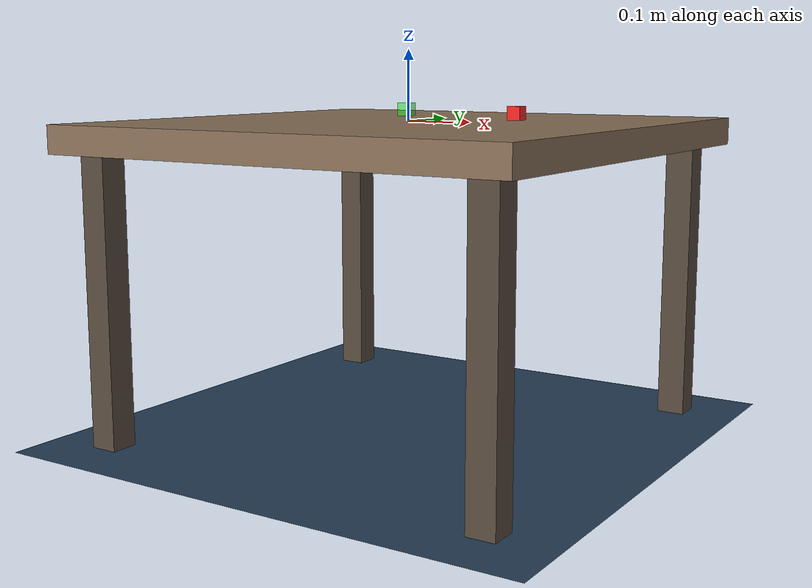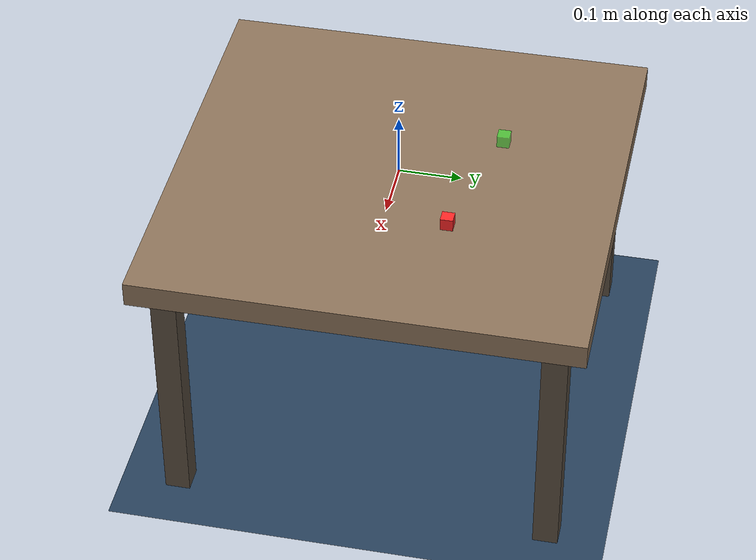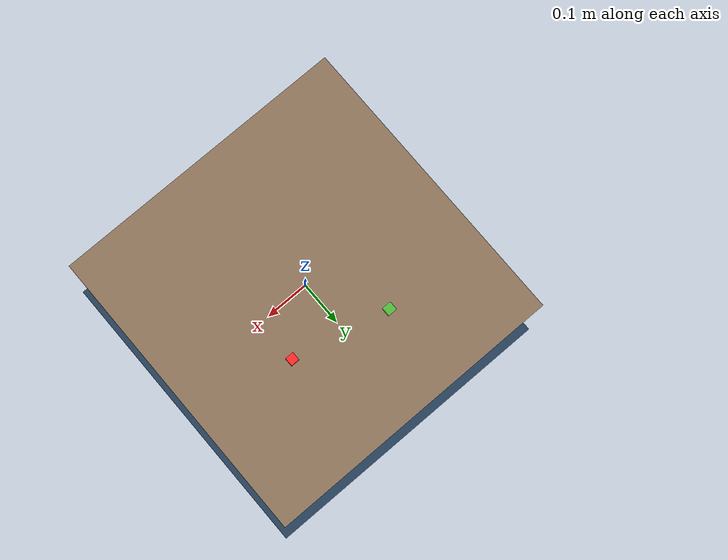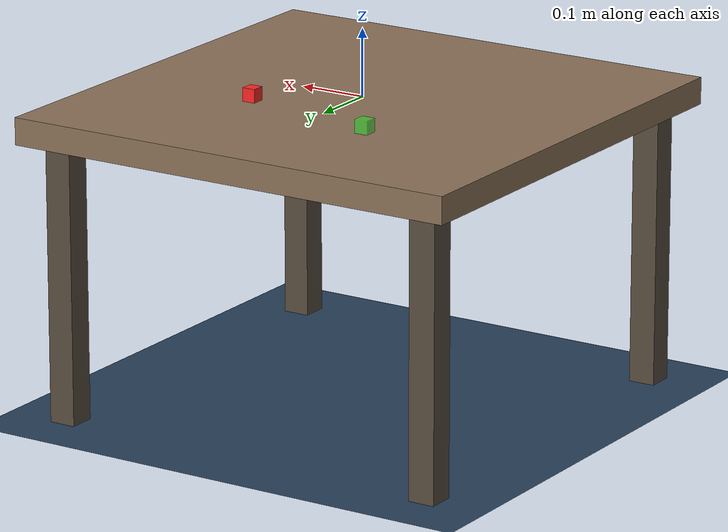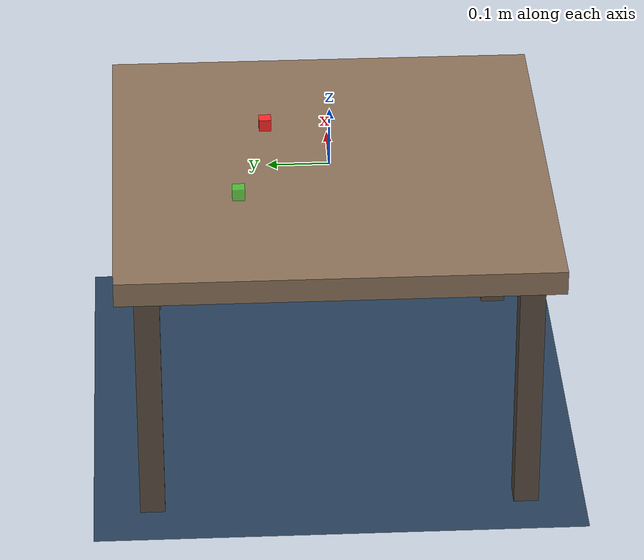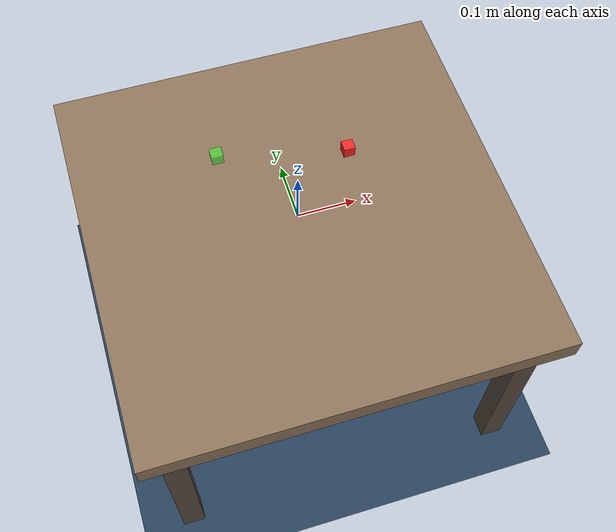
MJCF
<mujoco model="reach_scene">
  <compiler angle="radian" autolimits="true"/>

  <option timestep="0.002" integrator="implicitfast"/>

  <visual>
    <headlight diffuse="0.6 0.6 0.6" ambient="0.3 0.3 0.3" specular="0 0 0"/>
    <global azimuth="120" elevation="-20"/>
  </visual>

  <asset>
    <texture type="2d" name="groundplane" builtin="checker" mark="edge"
             rgb1="0.2 0.3 0.4" rgb2="0.1 0.2 0.3" markrgb="0.8 0.8 0.8"
             width="300" height="300"/>
    <material name="groundplane" texture="groundplane" texuniform="true"
              texrepeat="5 5" reflectance="0.0"/>
  </asset>

  <worldbody>
    <camera name="overhead_cam" pos="0 0 0.65" xyaxes="1 0 0 0 1 0" fovy="65"/>
    <geom name="floor" type="plane" size="1 1 0.01" pos="0 0 -0.45"
          material="groundplane" contype="0" conaffinity="0"/>

    <light name="top_light" pos="0 0 1.0" dir="0 0 -1" diffuse="0.8 0.8 0.8"/>

    <body name="table" pos="0 0 0">
      <geom name="table_top" type="box" size="0.35 0.35 0.02" pos="0 0 -0.02"
            rgba="0.55 0.45 0.35 1" contype="1" conaffinity="1"/>
      <geom name="table_leg_1" type="box" size="0.02 0.02 0.21" pos="0.3 0.3 -0.25"
            rgba="0.35 0.3 0.25 1" contype="1" conaffinity="1"/>
      <geom name="table_leg_2" type="box" size="0.02 0.02 0.21" pos="-0.3 0.3 -0.25"
            rgba="0.35 0.3 0.25 1" contype="1" conaffinity="1"/>
      <geom name="table_leg_3" type="box" size="0.02 0.02 0.21" pos="0.3 -0.3 -0.25"
            rgba="0.35 0.3 0.25 1" contype="1" conaffinity="1"/>
      <geom name="table_leg_4" type="box" size="0.02 0.02 0.21" pos="-0.3 -0.3 -0.25"
            rgba="0.35 0.3 0.25 1" contype="1" conaffinity="1"/>
    </body>

    <body name="box" pos="0.12 0.10 0.01">
      <joint name="box_joint" type="free"/>
      <geom name="box_geom" type="box" size="0.01 0.01 0.01"
            rgba="1.0 0.15 0.15 1" contype="1" conaffinity="1"/>
    </body>

    <body name="place_target" pos="-0.10 0.15 0.01" mocap="true">
      <geom name="place_target_geom" type="box" size="0.01 0.01 0.01"
            rgba="0.15 1.0 0.15 0.55" contype="0" conaffinity="0"/>
      <site name="place_target_site" pos="0 0 0" size="0.005" rgba="1 1 1 0"/>
    </body>
  </worldbody>
</mujoco>
